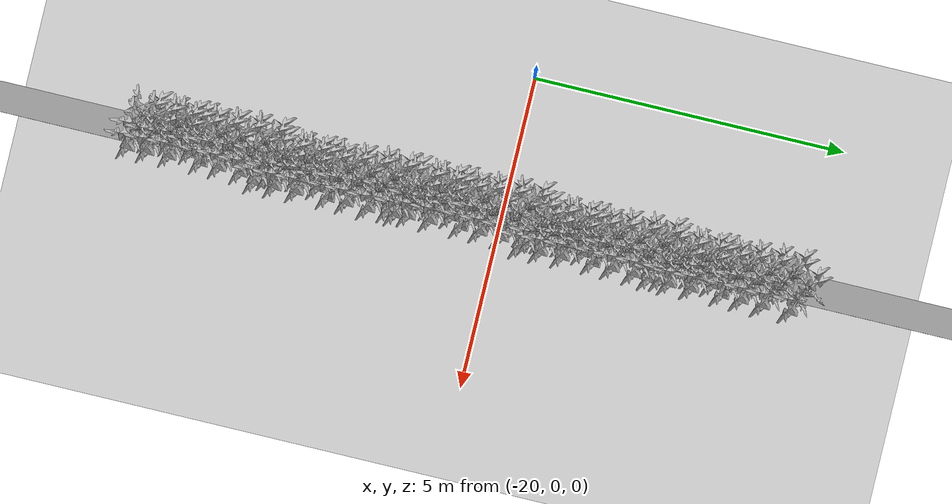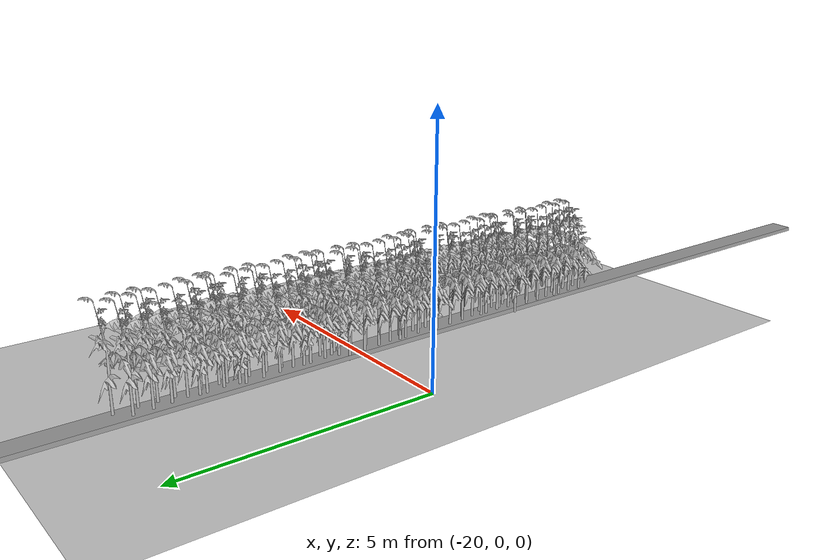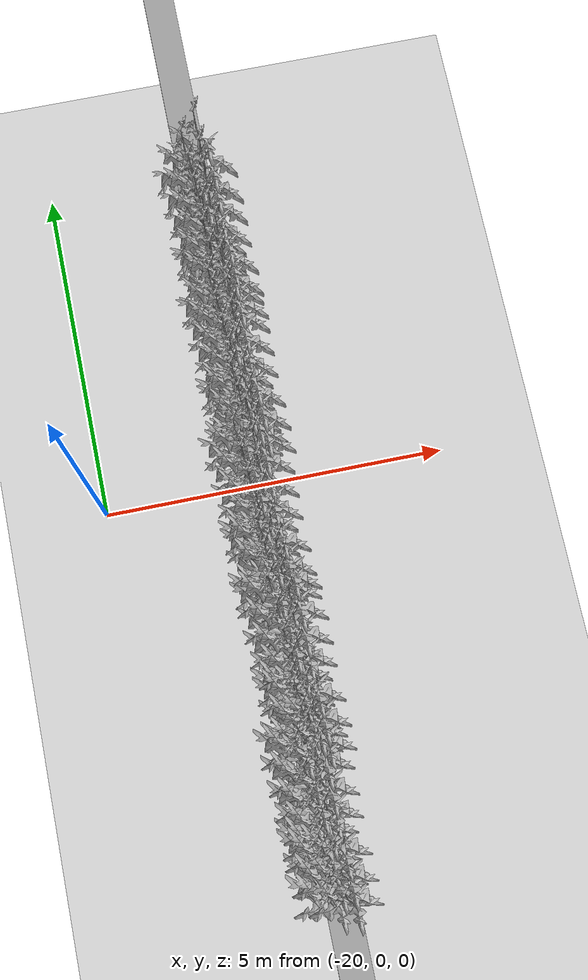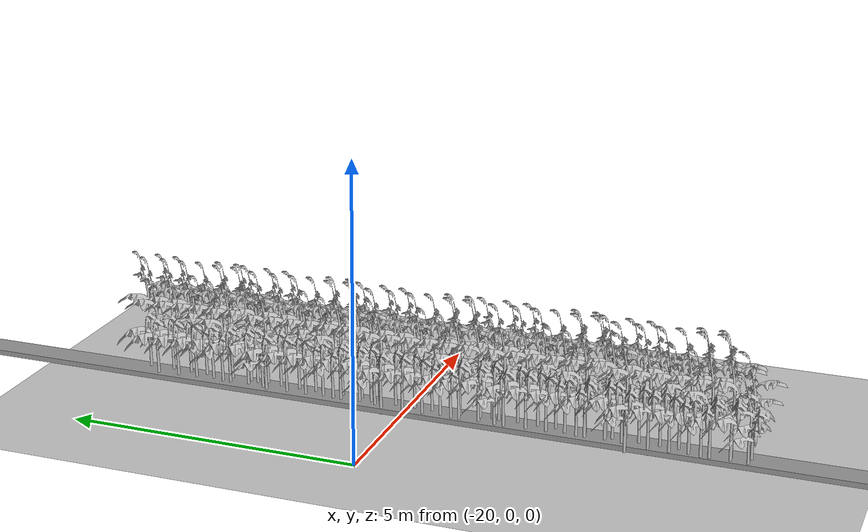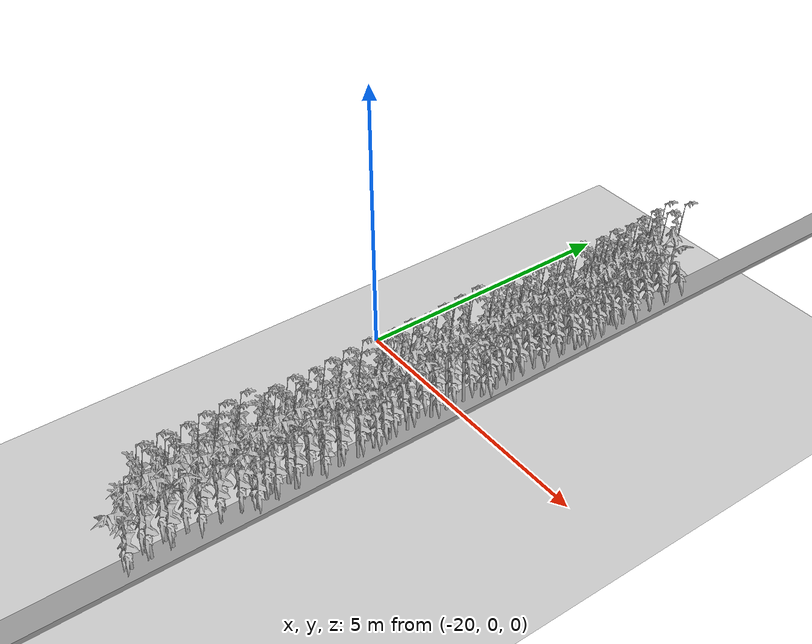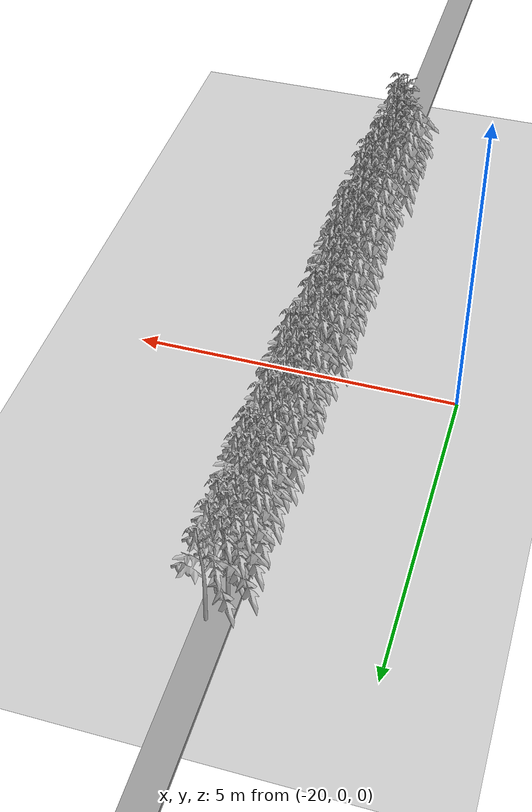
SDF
<sdf version="1.6">
 <world name="default">
  <model name="ground_plane">
   <static>1</static>
   <link name="link">
    <collision name="collision">
     <geometry><plane><normal>0 0 1</normal><size>100 100</size></plane></geometry>
     <surface>
      <contact><collide_bitmask>65535</collide_bitmask></contact>
      <friction><ode><mu>100</mu><mu2>50</mu2></ode></friction>
     </surface>
    </collision>
    <visual name="visual">
     <cast_shadows>0</cast_shadows>
     <geometry><plane><normal>0 0 1</normal><size>100 100</size></plane></geometry>
     <material>
      <script><uri>file://media/materials/scripts/gazebo.material</uri><name>Gazebo/Grey</name></script>
     </material>
    </visual>
   </link>
  </model>
  <model name="Plant_Base_0">
   <model name="Plant_Base">
    <link name="link_0">
     <inertial>
      <mass>1.1839</mass>
      <inertia>
       <ixx>75.2086</ixx>
       <ixy>0</ixy>
       <ixz>0</ixz>
       <iyy>0.0226752</iyy>
       <iyz>0</iyz>
       <izz>75.2297</izz>
      </inertia>
     </inertial>
     <pose>1.3e-05 0 0 0 -0.006723 0</pose>
     <visual name="visual">
      <geometry><box><size>0.470639 27.6098 0.091294</size></box></geometry>
      <material>
       <lighting>1</lighting>
       <script><uri>file://media/materials/scripts/gazebo.material</uri><name>Gazebo/Grey</name></script>
      </material>
     </visual>
     <collision name="collision">
      <geometry><box><size>0.470639 27.6098 0.091294</size></box></geometry>
      <surface>
       <friction>
        <ode><mu>1</mu><mu2>1</mu2><fdir1>0 0 0</fdir1><slip1>0</slip1><slip2>0</slip2></ode>
        <torsional>
         <coefficient>1</coefficient>
         <patch_radius>0</patch_radius>
         <surface_radius>0</surface_radius>
         <use_patch_radius>1</use_patch_radius>
         <ode><slip>0</slip></ode>
        </torsional>
       </friction>
       <bounce><restitution_coefficient>0</restitution_coefficient><threshold>1e+06</threshold></bounce>
       <contact>
        <collide_without_contact>0</collide_without_contact>
        <collide_without_contact_bitmask>1</collide_without_contact_bitmask>
        <collide_bitmask>1</collide_bitmask>
        <ode>
         <soft_cfm>0</soft_cfm>
         <soft_erp>0.2</soft_erp>
         <kp>1e+13</kp>
         <kd>1</kd>
         <max_vel>0.01</max_vel>
         <min_depth>0</min_depth>
        </ode>
        <bullet>
         <split_impulse>1</split_impulse>
         <split_impulse_penetration_threshold>-0.01</split_impulse_penetration_threshold>
         <soft_cfm>0</soft_cfm>
         <soft_erp>0.2</soft_erp>
         <kp>1e+13</kp>
         <kd>1</kd>
        </bullet>
       </contact>
      </surface>
     </collision>
    </link>
    <static>0</static>
    <pose>-3.5e-05 3e-06 0 0 -0 0</pose>
   </model>
   <static>1</static>
   <pose>-17.7667 -0.137203 0.055519 0 -0 0</pose>
  </model>
  <model name="Middle_Plant_1">
   <model name="tomato_plant_big">
    <static>1</static>
    <link name="link">
     <collision name="collision">
      <geometry>
       <mesh><scale>5e-06 5e-06 6e-06</scale><uri>model://tomato_plant_big/meshes/tomato-plant.dae</uri></mesh>
      </geometry>
     </collision>
     <visual name="visual">
      <geometry>
       <mesh><scale>5e-06 5e-06 7e-06</scale><uri>model://tomato_plant_big/meshes/tomato-plant.dae</uri></mesh>
      </geometry>
     </visual>
    </link>
    <pose>0.085326 1.23023 0 0 -0 0</pose>
   </model>
   <model name="tomato_plant_big_0">
    <static>1</static>
    <link name="link">
     <collision name="collision">
      <geometry>
       <mesh><scale>5e-06 5e-06 6e-06</scale><uri>model://tomato_plant_big/meshes/tomato-plant.dae</uri></mesh>
      </geometry>
     </collision>
     <visual name="visual">
      <geometry>
       <mesh><scale>5e-06 5e-06 7e-06</scale><uri>model://tomato_plant_big/meshes/tomato-plant.dae</uri></mesh>
      </geometry>
     </visual>
    </link>
    <pose>-0.133881 0.970183 0 0 -0 0</pose>
   </model>
   <model name="tomato_plant_big_1">
    <static>1</static>
    <link name="link">
     <collision name="collision">
      <geometry>
       <mesh><scale>5e-06 5e-06 6e-06</scale><uri>model://tomato_plant_big/meshes/tomato-plant.dae</uri></mesh>
      </geometry>
     </collision>
     <visual name="visual">
      <geometry>
       <mesh><scale>5e-06 5e-06 7e-06</scale><uri>model://tomato_plant_big/meshes/tomato-plant.dae</uri></mesh>
      </geometry>
     </visual>
    </link>
    <pose>0.091162 0.792381 0 0 -0 0</pose>
   </model>
   <model name="tomato_plant_big_2">
    <static>1</static>
    <link name="link">
     <collision name="collision">
      <geometry>
       <mesh><scale>5e-06 5e-06 6e-06</scale><uri>model://tomato_plant_big/meshes/tomato-plant.dae</uri></mesh>
      </geometry>
     </collision>
     <visual name="visual">
      <geometry>
       <mesh><scale>5e-06 5e-06 7e-06</scale><uri>model://tomato_plant_big/meshes/tomato-plant.dae</uri></mesh>
      </geometry>
     </visual>
    </link>
    <pose>-0.099228 0.602587 0 0 -0 0</pose>
   </model>
   <model name="tomato_plant_big_3">
    <static>1</static>
    <link name="link">
     <collision name="collision">
      <geometry>
       <mesh><scale>5e-06 5e-06 6e-06</scale><uri>model://tomato_plant_big/meshes/tomato-plant.dae</uri></mesh>
      </geometry>
     </collision>
     <visual name="visual">
      <geometry>
       <mesh><scale>5e-06 5e-06 7e-06</scale><uri>model://tomato_plant_big/meshes/tomato-plant.dae</uri></mesh>
      </geometry>
     </visual>
    </link>
    <pose>0.083199 0.447645 0 0 -0 0</pose>
   </model>
   <model name="tomato_plant_big_4">
    <static>1</static>
    <link name="link">
     <collision name="collision">
      <geometry>
       <mesh><scale>5e-06 5e-06 6e-06</scale><uri>model://tomato_plant_big/meshes/tomato-plant.dae</uri></mesh>
      </geometry>
     </collision>
     <visual name="visual">
      <geometry>
       <mesh><scale>5e-06 5e-06 7e-06</scale><uri>model://tomato_plant_big/meshes/tomato-plant.dae</uri></mesh>
      </geometry>
     </visual>
    </link>
    <pose>-0.079499 0.263486 0 0 -0 0</pose>
   </model>
   <model name="tomato_plant_big_5">
    <static>1</static>
    <link name="link">
     <collision name="collision">
      <geometry>
       <mesh><scale>5e-06 5e-06 6e-06</scale><uri>model://tomato_plant_big/meshes/tomato-plant.dae</uri></mesh>
      </geometry>
     </collision>
     <visual name="visual">
      <geometry>
       <mesh><scale>5e-06 5e-06 7e-06</scale><uri>model://tomato_plant_big/meshes/tomato-plant.dae</uri></mesh>
      </geometry>
     </visual>
    </link>
    <pose>-0.033274 -0.040578 0 0 -0 0</pose>
   </model>
   <model name="tomato_plant_big_6">
    <static>1</static>
    <link name="link">
     <collision name="collision">
      <geometry>
       <mesh><scale>5e-06 5e-06 6e-06</scale><uri>model://tomato_plant_big/meshes/tomato-plant.dae</uri></mesh>
      </geometry>
     </collision>
     <visual name="visual">
      <geometry>
       <mesh><scale>5e-06 5e-06 7e-06</scale><uri>model://tomato_plant_big/meshes/tomato-plant.dae</uri></mesh>
      </geometry>
     </visual>
    </link>
    <pose>-0.07669 -0.382406 0 0 -0 0</pose>
   </model>
   <model name="tomato_plant_big_7">
    <static>1</static>
    <link name="link">
     <collision name="collision">
      <geometry>
       <mesh><scale>5e-06 5e-06 6e-06</scale><uri>model://tomato_plant_big/meshes/tomato-plant.dae</uri></mesh>
      </geometry>
     </collision>
     <visual name="visual">
      <geometry>
       <mesh><scale>5e-06 5e-06 7e-06</scale><uri>model://tomato_plant_big/meshes/tomato-plant.dae</uri></mesh>
      </geometry>
     </visual>
    </link>
    <pose>0.092388 -0.348189 0 0 -0 0</pose>
   </model>
   <model name="tomato_plant_big_8">
    <static>1</static>
    <link name="link">
     <collision name="collision">
      <geometry>
       <mesh><scale>5e-06 5e-06 6e-06</scale><uri>model://tomato_plant_big/meshes/tomato-plant.dae</uri></mesh>
      </geometry>
     </collision>
     <visual name="visual">
      <geometry>
       <mesh><scale>5e-06 5e-06 7e-06</scale><uri>model://tomato_plant_big/meshes/tomato-plant.dae</uri></mesh>
      </geometry>
     </visual>
    </link>
    <pose>0.099522 -0.697525 0 0 -0 0</pose>
   </model>
   <model name="tomato_plant_big_9">
    <static>1</static>
    <link name="link">
     <collision name="collision">
      <geometry>
       <mesh><scale>5e-06 5e-06 6e-06</scale><uri>model://tomato_plant_big/meshes/tomato-plant.dae</uri></mesh>
      </geometry>
     </collision>
     <visual name="visual">
      <geometry>
       <mesh><scale>5e-06 5e-06 7e-06</scale><uri>model://tomato_plant_big/meshes/tomato-plant.dae</uri></mesh>
      </geometry>
     </visual>
    </link>
    <pose>-0.050449 -0.712772 0 0 -0 0</pose>
   </model>
   <model name="tomato_plant_medium">
    <static>1</static>
    <link name="link">
     <collision name="collision">
      <geometry>
       <mesh><scale>5e-06 5e-06 6e-06</scale><uri>model://tomato_plant_medium/meshes/tomato-plant.dae</uri></mesh>
      </geometry>
     </collision>
     <visual name="visual">
      <geometry>
       <mesh><scale>5e-06 5e-06 6e-06</scale><uri>model://tomato_plant_medium/meshes/tomato-plant.dae</uri></mesh>
      </geometry>
     </visual>
    </link>
    <pose>0.078434 0.139842 0 0 -0 0</pose>
   </model>
   <model name="tomato_plant_medium_0">
    <static>1</static>
    <link name="link">
     <collision name="collision">
      <geometry>
       <mesh><scale>5e-06 5e-06 6e-06</scale><uri>model://tomato_plant_medium/meshes/tomato-plant.dae</uri></mesh>
      </geometry>
     </collision>
     <visual name="visual">
      <geometry>
       <mesh><scale>5e-06 5e-06 6e-06</scale><uri>model://tomato_plant_medium/meshes/tomato-plant.dae</uri></mesh>
      </geometry>
     </visual>
    </link>
    <pose>-0.079755 -0.244483 0 0 -0 0</pose>
   </model>
   <model name="tomato_plant_medium_1">
    <static>1</static>
    <link name="link">
     <collision name="collision">
      <geometry>
       <mesh><scale>5e-06 5e-06 6e-06</scale><uri>model://tomato_plant_medium/meshes/tomato-plant.dae</uri></mesh>
      </geometry>
     </collision>
     <visual name="visual">
      <geometry>
       <mesh><scale>5e-06 5e-06 6e-06</scale><uri>model://tomato_plant_medium/meshes/tomato-plant.dae</uri></mesh>
      </geometry>
     </visual>
    </link>
    <pose>0.106744 -1.01815 0 0 -0 0</pose>
   </model>
   <model name="tomato_plant_small">
    <static>1</static>
    <link name="link">
     <collision name="collision">
      <geometry>
       <mesh><scale>5e-06 5e-06 5e-06</scale><uri>model://tomato_plant_small/meshes/tomato-plant.dae</uri></mesh>
      </geometry>
     </collision>
     <visual name="visual">
      <geometry>
       <mesh><scale>5e-06 5e-06 5e-06</scale><uri>model://tomato_plant_small/meshes/tomato-plant.dae</uri></mesh>
      </geometry>
     </visual>
    </link>
    <pose>-0.083979 -1.00222 0 0 -0 0</pose>
   </model>
   <static>0</static>
   <pose>-17.8578 -4.83213 0 0 -0 0</pose>
  </model>
  <model name="Middle_Plant_2">
   <model name="tomato_plant_big">
    <static>1</static>
    <link name="link">
     <collision name="collision">
      <geometry>
       <mesh><scale>5e-06 5e-06 6e-06</scale><uri>model://tomato_plant_big/meshes/tomato-plant.dae</uri></mesh>
      </geometry>
     </collision>
     <visual name="visual">
      <geometry>
       <mesh><scale>5e-06 5e-06 7e-06</scale><uri>model://tomato_plant_big/meshes/tomato-plant.dae</uri></mesh>
      </geometry>
     </visual>
    </link>
    <pose>0.085326 1.23023 0 0 -0 0</pose>
   </model>
   <model name="tomato_plant_big_0">
    <static>1</static>
    <link name="link">
     <collision name="collision">
      <geometry>
       <mesh><scale>5e-06 5e-06 6e-06</scale><uri>model://tomato_plant_big/meshes/tomato-plant.dae</uri></mesh>
      </geometry>
     </collision>
     <visual name="visual">
      <geometry>
       <mesh><scale>5e-06 5e-06 7e-06</scale><uri>model://tomato_plant_big/meshes/tomato-plant.dae</uri></mesh>
      </geometry>
     </visual>
    </link>
    <pose>-0.133881 0.970183 0 0 -0 0</pose>
   </model>
   <model name="tomato_plant_big_1">
    <static>1</static>
    <link name="link">
     <collision name="collision">
      <geometry>
       <mesh><scale>5e-06 5e-06 6e-06</scale><uri>model://tomato_plant_big/meshes/tomato-plant.dae</uri></mesh>
      </geometry>
     </collision>
     <visual name="visual">
      <geometry>
       <mesh><scale>5e-06 5e-06 7e-06</scale><uri>model://tomato_plant_big/meshes/tomato-plant.dae</uri></mesh>
      </geometry>
     </visual>
    </link>
    <pose>0.091162 0.792381 0 0 -0 0</pose>
   </model>
   <model name="tomato_plant_big_2">
    <static>1</static>
    <link name="link">
     <collision name="collision">
      <geometry>
       <mesh><scale>5e-06 5e-06 6e-06</scale><uri>model://tomato_plant_big/meshes/tomato-plant.dae</uri></mesh>
      </geometry>
     </collision>
     <visual name="visual">
      <geometry>
       <mesh><scale>5e-06 5e-06 7e-06</scale><uri>model://tomato_plant_big/meshes/tomato-plant.dae</uri></mesh>
      </geometry>
     </visual>
    </link>
    <pose>-0.099228 0.602587 0 0 -0 0</pose>
   </model>
   <model name="tomato_plant_big_3">
    <static>1</static>
    <link name="link">
     <collision name="collision">
      <geometry>
       <mesh><scale>5e-06 5e-06 6e-06</scale><uri>model://tomato_plant_big/meshes/tomato-plant.dae</uri></mesh>
      </geometry>
     </collision>
     <visual name="visual">
      <geometry>
       <mesh><scale>5e-06 5e-06 7e-06</scale><uri>model://tomato_plant_big/meshes/tomato-plant.dae</uri></mesh>
      </geometry>
     </visual>
    </link>
    <pose>0.083199 0.447645 0 0 -0 0</pose>
   </model>
   <model name="tomato_plant_big_4">
    <static>1</static>
    <link name="link">
     <collision name="collision">
      <geometry>
       <mesh><scale>5e-06 5e-06 6e-06</scale><uri>model://tomato_plant_big/meshes/tomato-plant.dae</uri></mesh>
      </geometry>
     </collision>
     <visual name="visual">
      <geometry>
       <mesh><scale>5e-06 5e-06 7e-06</scale><uri>model://tomato_plant_big/meshes/tomato-plant.dae</uri></mesh>
      </geometry>
     </visual>
    </link>
    <pose>-0.079499 0.263486 0 0 -0 0</pose>
   </model>
   <model name="tomato_plant_big_5">
    <static>1</static>
    <link name="link">
     <collision name="collision">
      <geometry>
       <mesh><scale>5e-06 5e-06 6e-06</scale><uri>model://tomato_plant_big/meshes/tomato-plant.dae</uri></mesh>
      </geometry>
     </collision>
     <visual name="visual">
      <geometry>
       <mesh><scale>5e-06 5e-06 7e-06</scale><uri>model://tomato_plant_big/meshes/tomato-plant.dae</uri></mesh>
      </geometry>
     </visual>
    </link>
    <pose>-0.033274 -0.040578 0 0 -0 0</pose>
   </model>
   <model name="tomato_plant_big_6">
    <static>1</static>
    <link name="link">
     <collision name="collision">
      <geometry>
       <mesh><scale>5e-06 5e-06 6e-06</scale><uri>model://tomato_plant_big/meshes/tomato-plant.dae</uri></mesh>
      </geometry>
     </collision>
     <visual name="visual">
      <geometry>
       <mesh><scale>5e-06 5e-06 7e-06</scale><uri>model://tomato_plant_big/meshes/tomato-plant.dae</uri></mesh>
      </geometry>
     </visual>
    </link>
    <pose>-0.07669 -0.382406 0 0 -0 0</pose>
   </model>
   <model name="tomato_plant_big_7">
    <static>1</static>
    <link name="link">
     <collision name="collision">
      <geometry>
       <mesh><scale>5e-06 5e-06 6e-06</scale><uri>model://tomato_plant_big/meshes/tomato-plant.dae</uri></mesh>
      </geometry>
     </collision>
     <visual name="visual">
      <geometry>
       <mesh><scale>5e-06 5e-06 7e-06</scale><uri>model://tomato_plant_big/meshes/tomato-plant.dae</uri></mesh>
      </geometry>
     </visual>
    </link>
    <pose>0.092388 -0.348189 0 0 -0 0</pose>
   </model>
   <model name="tomato_plant_big_8">
    <static>1</static>
    <link name="link">
     <collision name="collision">
      <geometry>
       <mesh><scale>5e-06 5e-06 6e-06</scale><uri>model://tomato_plant_big/meshes/tomato-plant.dae</uri></mesh>
      </geometry>
     </collision>
     <visual name="visual">
      <geometry>
       <mesh><scale>5e-06 5e-06 7e-06</scale><uri>model://tomato_plant_big/meshes/tomato-plant.dae</uri></mesh>
      </geometry>
     </visual>
    </link>
    <pose>0.099522 -0.697525 0 0 -0 0</pose>
   </model>
   <model name="tomato_plant_big_9">
    <static>1</static>
    <link name="link">
     <collision name="collision">
      <geometry>
       <mesh><scale>5e-06 5e-06 6e-06</scale><uri>model://tomato_plant_big/meshes/tomato-plant.dae</uri></mesh>
      </geometry>
     </collision>
     <visual name="visual">
      <geometry>
       <mesh><scale>5e-06 5e-06 7e-06</scale><uri>model://tomato_plant_big/meshes/tomato-plant.dae</uri></mesh>
      </geometry>
     </visual>
    </link>
    <pose>-0.050449 -0.712772 0 0 -0 0</pose>
   </model>
   <model name="tomato_plant_medium">
    <static>1</static>
    <link name="link">
     <collision name="collision">
      <geometry>
       <mesh><scale>5e-06 5e-06 6e-06</scale><uri>model://tomato_plant_medium/meshes/tomato-plant.dae</uri></mesh>
      </geometry>
     </collision>
     <visual name="visual">
      <geometry>
       <mesh><scale>5e-06 5e-06 6e-06</scale><uri>model://tomato_plant_medium/meshes/tomato-plant.dae</uri></mesh>
      </geometry>
     </visual>
    </link>
    <pose>0.078434 0.139842 0 0 -0 0</pose>
   </model>
   <model name="tomato_plant_medium_0">
    <static>1</static>
    <link name="link">
     <collision name="collision">
      <geometry>
       <mesh><scale>5e-06 5e-06 6e-06</scale><uri>model://tomato_plant_medium/meshes/tomato-plant.dae</uri></mesh>
      </geometry>
     </collision>
     <visual name="visual">
      <geometry>
       <mesh><scale>5e-06 5e-06 6e-06</scale><uri>model://tomato_plant_medium/meshes/tomato-plant.dae</uri></mesh>
      </geometry>
     </visual>
    </link>
    <pose>-0.079755 -0.244483 0 0 -0 0</pose>
   </model>
   <model name="tomato_plant_medium_1">
    <static>1</static>
    <link name="link">
     <collision name="collision">
      <geometry>
       <mesh><scale>5e-06 5e-06 6e-06</scale><uri>model://tomato_plant_medium/meshes/tomato-plant.dae</uri></mesh>
      </geometry>
     </collision>
     <visual name="visual">
      <geometry>
       <mesh><scale>5e-06 5e-06 6e-06</scale><uri>model://tomato_plant_medium/meshes/tomato-plant.dae</uri></mesh>
      </geometry>
     </visual>
    </link>
    <pose>0.106744 -1.01815 0 0 -0 0</pose>
   </model>
   <model name="tomato_plant_small">
    <static>1</static>
    <link name="link">
     <collision name="collision">
      <geometry>
       <mesh><scale>5e-06 5e-06 5e-06</scale><uri>model://tomato_plant_small/meshes/tomato-plant.dae</uri></mesh>
      </geometry>
     </collision>
     <visual name="visual">
      <geometry>
       <mesh><scale>5e-06 5e-06 5e-06</scale><uri>model://tomato_plant_small/meshes/tomato-plant.dae</uri></mesh>
      </geometry>
     </visual>
    </link>
    <pose>-0.083979 -1.00222 0 0 -0 0</pose>
   </model>
   <static>0</static>
   <pose>-17.7846 -2.78008 0 0 -0 0</pose>
  </model>
  <model name="Middle_Plant_3">
   <model name="tomato_plant_big">
    <static>1</static>
    <link name="link">
     <collision name="collision">
      <geometry>
       <mesh><scale>5e-06 5e-06 6e-06</scale><uri>model://tomato_plant_big/meshes/tomato-plant.dae</uri></mesh>
      </geometry>
     </collision>
     <visual name="visual">
      <geometry>
       <mesh><scale>5e-06 5e-06 7e-06</scale><uri>model://tomato_plant_big/meshes/tomato-plant.dae</uri></mesh>
      </geometry>
     </visual>
    </link>
    <pose>0.085326 1.23023 0 0 -0 0</pose>
   </model>
   <model name="tomato_plant_big_0">
    <static>1</static>
    <link name="link">
     <collision name="collision">
      <geometry>
       <mesh><scale>5e-06 5e-06 6e-06</scale><uri>model://tomato_plant_big/meshes/tomato-plant.dae</uri></mesh>
      </geometry>
     </collision>
     <visual name="visual">
      <geometry>
       <mesh><scale>5e-06 5e-06 7e-06</scale><uri>model://tomato_plant_big/meshes/tomato-plant.dae</uri></mesh>
      </geometry>
     </visual>
    </link>
    <pose>-0.133881 0.970183 0 0 -0 0</pose>
   </model>
   <model name="tomato_plant_big_1">
    <static>1</static>
    <link name="link">
     <collision name="collision">
      <geometry>
       <mesh><scale>5e-06 5e-06 6e-06</scale><uri>model://tomato_plant_big/meshes/tomato-plant.dae</uri></mesh>
      </geometry>
     </collision>
     <visual name="visual">
      <geometry>
       <mesh><scale>5e-06 5e-06 7e-06</scale><uri>model://tomato_plant_big/meshes/tomato-plant.dae</uri></mesh>
      </geometry>
     </visual>
    </link>
    <pose>0.091162 0.792381 0 0 -0 0</pose>
   </model>
   <model name="tomato_plant_big_2">
    <static>1</static>
    <link name="link">
     <collision name="collision">
      <geometry>
       <mesh><scale>5e-06 5e-06 6e-06</scale><uri>model://tomato_plant_big/meshes/tomato-plant.dae</uri></mesh>
      </geometry>
     </collision>
     <visual name="visual">
      <geometry>
       <mesh><scale>5e-06 5e-06 7e-06</scale><uri>model://tomato_plant_big/meshes/tomato-plant.dae</uri></mesh>
      </geometry>
     </visual>
    </link>
    <pose>-0.099228 0.602587 0 0 -0 0</pose>
   </model>
   <model name="tomato_plant_big_3">
    <static>1</static>
    <link name="link">
     <collision name="collision">
      <geometry>
       <mesh><scale>5e-06 5e-06 6e-06</scale><uri>model://tomato_plant_big/meshes/tomato-plant.dae</uri></mesh>
      </geometry>
     </collision>
     <visual name="visual">
      <geometry>
       <mesh><scale>5e-06 5e-06 7e-06</scale><uri>model://tomato_plant_big/meshes/tomato-plant.dae</uri></mesh>
      </geometry>
     </visual>
    </link>
    <pose>0.083199 0.447645 0 0 -0 0</pose>
   </model>
   <model name="tomato_plant_big_4">
    <static>1</static>
    <link name="link">
     <collision name="collision">
      <geometry>
       <mesh><scale>5e-06 5e-06 6e-06</scale><uri>model://tomato_plant_big/meshes/tomato-plant.dae</uri></mesh>
      </geometry>
     </collision>
     <visual name="visual">
      <geometry>
       <mesh><scale>5e-06 5e-06 7e-06</scale><uri>model://tomato_plant_big/meshes/tomato-plant.dae</uri></mesh>
      </geometry>
     </visual>
    </link>
    <pose>-0.079499 0.263486 0 0 -0 0</pose>
   </model>
   <model name="tomato_plant_big_5">
    <static>1</static>
    <link name="link">
     <collision name="collision">
      <geometry>
       <mesh><scale>5e-06 5e-06 6e-06</scale><uri>model://tomato_plant_big/meshes/tomato-plant.dae</uri></mesh>
      </geometry>
     </collision>
     <visual name="visual">
      <geometry>
       <mesh><scale>5e-06 5e-06 7e-06</scale><uri>model://tomato_plant_big/meshes/tomato-plant.dae</uri></mesh>
      </geometry>
     </visual>
    </link>
    <pose>-0.033274 -0.040578 0 0 -0 0</pose>
   </model>
   <model name="tomato_plant_big_6">
    <static>1</static>
    <link name="link">
     <collision name="collision">
      <geometry>
       <mesh><scale>5e-06 5e-06 6e-06</scale><uri>model://tomato_plant_big/meshes/tomato-plant.dae</uri></mesh>
      </geometry>
     </collision>
     <visual name="visual">
      <geometry>
       <mesh><scale>5e-06 5e-06 7e-06</scale><uri>model://tomato_plant_big/meshes/tomato-plant.dae</uri></mesh>
      </geometry>
     </visual>
    </link>
    <pose>-0.07669 -0.382406 0 0 -0 0</pose>
   </model>
   <model name="tomato_plant_big_7">
    <static>1</static>
    <link name="link">
     <collision name="collision">
      <geometry>
       <mesh><scale>5e-06 5e-06 6e-06</scale><uri>model://tomato_plant_big/meshes/tomato-plant.dae</uri></mesh>
      </geometry>
     </collision>
     <visual name="visual">
      <geometry>
       <mesh><scale>5e-06 5e-06 7e-06</scale><uri>model://tomato_plant_big/meshes/tomato-plant.dae</uri></mesh>
      </geometry>
     </visual>
    </link>
    <pose>0.092388 -0.348189 0 0 -0 0</pose>
   </model>
   <model name="tomato_plant_big_8">
    <static>1</static>
    <link name="link">
     <collision name="collision">
      <geometry>
       <mesh><scale>5e-06 5e-06 6e-06</scale><uri>model://tomato_plant_big/meshes/tomato-plant.dae</uri></mesh>
      </geometry>
     </collision>
     <visual name="visual">
      <geometry>
       <mesh><scale>5e-06 5e-06 7e-06</scale><uri>model://tomato_plant_big/meshes/tomato-plant.dae</uri></mesh>
      </geometry>
     </visual>
    </link>
    <pose>0.099522 -0.697525 0 0 -0 0</pose>
   </model>
   <model name="tomato_plant_big_9">
    <static>1</static>
    <link name="link">
     <collision name="collision">
      <geometry>
       <mesh><scale>5e-06 5e-06 6e-06</scale><uri>model://tomato_plant_big/meshes/tomato-plant.dae</uri></mesh>
      </geometry>
     </collision>
     <visual name="visual">
      <geometry>
       <mesh><scale>5e-06 5e-06 7e-06</scale><uri>model://tomato_plant_big/meshes/tomato-plant.dae</uri></mesh>
      </geometry>
     </visual>
    </link>
    <pose>-0.050449 -0.712772 0 0 -0 0</pose>
   </model>
   <model name="tomato_plant_medium">
    <static>1</static>
    <link name="link">
     <collision name="collision">
      <geometry>
       <mesh><scale>5e-06 5e-06 6e-06</scale><uri>model://tomato_plant_medium/meshes/tomato-plant.dae</uri></mesh>
      </geometry>
     </collision>
     <visual name="visual">
      <geometry>
       <mesh><scale>5e-06 5e-06 6e-06</scale><uri>model://tomato_plant_medium/meshes/tomato-plant.dae</uri></mesh>
      </geometry>
     </visual>
    </link>
    <pose>0.078434 0.139842 0 0 -0 0</pose>
   </model>
   <model name="tomato_plant_medium_0">
    <static>1</static>
    <link name="link">
     <collision name="collision">
      <geometry>
       <mesh><scale>5e-06 5e-06 6e-06</scale><uri>model://tomato_plant_medium/meshes/tomato-plant.dae</uri></mesh>
      </geometry>
     </collision>
     <visual name="visual">
      <geometry>
       <mesh><scale>5e-06 5e-06 6e-06</scale><uri>model://tomato_plant_medium/meshes/tomato-plant.dae</uri></mesh>
      </geometry>
     </visual>
    </link>
    <pose>-0.079755 -0.244483 0 0 -0 0</pose>
   </model>
   <model name="tomato_plant_medium_1">
    <static>1</static>
    <link name="link">
     <collision name="collision">
      <geometry>
       <mesh><scale>5e-06 5e-06 6e-06</scale><uri>model://tomato_plant_medium/meshes/tomato-plant.dae</uri></mesh>
      </geometry>
     </collision>
     <visual name="visual">
      <geometry>
       <mesh><scale>5e-06 5e-06 6e-06</scale><uri>model://tomato_plant_medium/meshes/tomato-plant.dae</uri></mesh>
      </geometry>
     </visual>
    </link>
    <pose>0.106744 -1.01815 0 0 -0 0</pose>
   </model>
   <model name="tomato_plant_small">
    <static>1</static>
    <link name="link">
     <collision name="collision">
      <geometry>
       <mesh><scale>5e-06 5e-06 5e-06</scale><uri>model://tomato_plant_small/meshes/tomato-plant.dae</uri></mesh>
      </geometry>
     </collision>
     <visual name="visual">
      <geometry>
       <mesh><scale>5e-06 5e-06 5e-06</scale><uri>model://tomato_plant_small/meshes/tomato-plant.dae</uri></mesh>
      </geometry>
     </visual>
    </link>
    <pose>-0.083979 -1.00222 0 0 -0 0</pose>
   </model>
   <static>0</static>
   <pose>-17.83 -0.652997 0 0 -0 0</pose>
  </model>
  <model name="Middle_Plant_4">
   <model name="tomato_plant_big">
    <static>1</static>
    <link name="link">
     <collision name="collision">
      <geometry>
       <mesh><scale>5e-06 5e-06 6e-06</scale><uri>model://tomato_plant_big/meshes/tomato-plant.dae</uri></mesh>
      </geometry>
     </collision>
     <visual name="visual">
      <geometry>
       <mesh><scale>5e-06 5e-06 7e-06</scale><uri>model://tomato_plant_big/meshes/tomato-plant.dae</uri></mesh>
      </geometry>
     </visual>
    </link>
    <pose>0.085326 1.23023 0 0 -0 0</pose>
   </model>
   <model name="tomato_plant_big_0">
    <static>1</static>
    <link name="link">
     <collision name="collision">
      <geometry>
       <mesh><scale>5e-06 5e-06 6e-06</scale><uri>model://tomato_plant_big/meshes/tomato-plant.dae</uri></mesh>
      </geometry>
     </collision>
     <visual name="visual">
      <geometry>
       <mesh><scale>5e-06 5e-06 7e-06</scale><uri>model://tomato_plant_big/meshes/tomato-plant.dae</uri></mesh>
      </geometry>
     </visual>
    </link>
    <pose>-0.133881 0.970183 0 0 -0 0</pose>
   </model>
   <model name="tomato_plant_big_1">
    <static>1</static>
    <link name="link">
     <collision name="collision">
      <geometry>
       <mesh><scale>5e-06 5e-06 6e-06</scale><uri>model://tomato_plant_big/meshes/tomato-plant.dae</uri></mesh>
      </geometry>
     </collision>
     <visual name="visual">
      <geometry>
       <mesh><scale>5e-06 5e-06 7e-06</scale><uri>model://tomato_plant_big/meshes/tomato-plant.dae</uri></mesh>
      </geometry>
     </visual>
    </link>
    <pose>0.091162 0.792381 0 0 -0 0</pose>
   </model>
   <model name="tomato_plant_big_2">
    <static>1</static>
    <link name="link">
     <collision name="collision">
      <geometry>
       <mesh><scale>5e-06 5e-06 6e-06</scale><uri>model://tomato_plant_big/meshes/tomato-plant.dae</uri></mesh>
      </geometry>
     </collision>
     <visual name="visual">
      <geometry>
       <mesh><scale>5e-06 5e-06 7e-06</scale><uri>model://tomato_plant_big/meshes/tomato-plant.dae</uri></mesh>
      </geometry>
     </visual>
    </link>
    <pose>-0.099228 0.602587 0 0 -0 0</pose>
   </model>
   <model name="tomato_plant_big_3">
    <static>1</static>
    <link name="link">
     <collision name="collision">
      <geometry>
       <mesh><scale>5e-06 5e-06 6e-06</scale><uri>model://tomato_plant_big/meshes/tomato-plant.dae</uri></mesh>
      </geometry>
     </collision>
     <visual name="visual">
      <geometry>
       <mesh><scale>5e-06 5e-06 7e-06</scale><uri>model://tomato_plant_big/meshes/tomato-plant.dae</uri></mesh>
      </geometry>
     </visual>
    </link>
    <pose>0.083199 0.447645 0 0 -0 0</pose>
   </model>
   <model name="tomato_plant_big_4">
    <static>1</static>
    <link name="link">
     <collision name="collision">
      <geometry>
       <mesh><scale>5e-06 5e-06 6e-06</scale><uri>model://tomato_plant_big/meshes/tomato-plant.dae</uri></mesh>
      </geometry>
     </collision>
     <visual name="visual">
      <geometry>
       <mesh><scale>5e-06 5e-06 7e-06</scale><uri>model://tomato_plant_big/meshes/tomato-plant.dae</uri></mesh>
      </geometry>
     </visual>
    </link>
    <pose>-0.079499 0.263486 0 0 -0 0</pose>
   </model>
   <model name="tomato_plant_big_5">
    <static>1</static>
    <link name="link">
     <collision name="collision">
      <geometry>
       <mesh><scale>5e-06 5e-06 6e-06</scale><uri>model://tomato_plant_big/meshes/tomato-plant.dae</uri></mesh>
      </geometry>
     </collision>
     <visual name="visual">
      <geometry>
       <mesh><scale>5e-06 5e-06 7e-06</scale><uri>model://tomato_plant_big/meshes/tomato-plant.dae</uri></mesh>
      </geometry>
     </visual>
    </link>
    <pose>-0.033274 -0.040578 0 0 -0 0</pose>
   </model>
   <model name="tomato_plant_big_6">
    <static>1</static>
    <link name="link">
     <collision name="collision">
      <geometry>
       <mesh><scale>5e-06 5e-06 6e-06</scale><uri>model://tomato_plant_big/meshes/tomato-plant.dae</uri></mesh>
      </geometry>
     </collision>
     <visual name="visual">
      <geometry>
       <mesh><scale>5e-06 5e-06 7e-06</scale><uri>model://tomato_plant_big/meshes/tomato-plant.dae</uri></mesh>
      </geometry>
     </visual>
    </link>
    <pose>-0.07669 -0.382406 0 0 -0 0</pose>
   </model>
   <model name="tomato_plant_big_7">
    <static>1</static>
    <link name="link">
     <collision name="collision">
      <geometry>
       <mesh><scale>5e-06 5e-06 6e-06</scale><uri>model://tomato_plant_big/meshes/tomato-plant.dae</uri></mesh>
      </geometry>
     </collision>
     <visual name="visual">
      <geometry>
       <mesh><scale>5e-06 5e-06 7e-06</scale><uri>model://tomato_plant_big/meshes/tomato-plant.dae</uri></mesh>
      </geometry>
     </visual>
    </link>
    <pose>0.092388 -0.348189 0 0 -0 0</pose>
   </model>
   <model name="tomato_plant_big_8">
    <static>1</static>
    <link name="link">
     <collision name="collision">
      <geometry>
       <mesh><scale>5e-06 5e-06 6e-06</scale><uri>model://tomato_plant_big/meshes/tomato-plant.dae</uri></mesh>
      </geometry>
     </collision>
     <visual name="visual">
      <geometry>
       <mesh><scale>5e-06 5e-06 7e-06</scale><uri>model://tomato_plant_big/meshes/tomato-plant.dae</uri></mesh>
      </geometry>
     </visual>
    </link>
    <pose>0.099522 -0.697525 0 0 -0 0</pose>
   </model>
   <model name="tomato_plant_big_9">
    <static>1</static>
    <link name="link">
     <collision name="collision">
      <geometry>
       <mesh><scale>5e-06 5e-06 6e-06</scale><uri>model://tomato_plant_big/meshes/tomato-plant.dae</uri></mesh>
      </geometry>
     </collision>
     <visual name="visual">
      <geometry>
       <mesh><scale>5e-06 5e-06 7e-06</scale><uri>model://tomato_plant_big/meshes/tomato-plant.dae</uri></mesh>
      </geometry>
     </visual>
    </link>
    <pose>-0.050449 -0.712772 0 0 -0 0</pose>
   </model>
   <model name="tomato_plant_medium">
    <static>1</static>
    <link name="link">
     <collision name="collision">
      <geometry>
       <mesh><scale>5e-06 5e-06 6e-06</scale><uri>model://tomato_plant_medium/meshes/tomato-plant.dae</uri></mesh>
      </geometry>
     </collision>
     <visual name="visual">
      <geometry>
       <mesh><scale>5e-06 5e-06 6e-06</scale><uri>model://tomato_plant_medium/meshes/tomato-plant.dae</uri></mesh>
      </geometry>
     </visual>
    </link>
    <pose>0.078434 0.139842 0 0 -0 0</pose>
   </model>
   <model name="tomato_plant_medium_0">
    <static>1</static>
    <link name="link">
     <collision name="collision">
      <geometry>
       <mesh><scale>5e-06 5e-06 6e-06</scale><uri>model://tomato_plant_medium/meshes/tomato-plant.dae</uri></mesh>
      </geometry>
     </collision>
     <visual name="visual">
      <geometry>
       <mesh><scale>5e-06 5e-06 6e-06</scale><uri>model://tomato_plant_medium/meshes/tomato-plant.dae</uri></mesh>
      </geometry>
     </visual>
    </link>
    <pose>-0.079755 -0.244483 0 0 -0 0</pose>
   </model>
   <model name="tomato_plant_medium_1">
    <static>1</static>
    <link name="link">
     <collision name="collision">
      <geometry>
       <mesh><scale>5e-06 5e-06 6e-06</scale><uri>model://tomato_plant_medium/meshes/tomato-plant.dae</uri></mesh>
      </geometry>
     </collision>
     <visual name="visual">
      <geometry>
       <mesh><scale>5e-06 5e-06 6e-06</scale><uri>model://tomato_plant_medium/meshes/tomato-plant.dae</uri></mesh>
      </geometry>
     </visual>
    </link>
    <pose>0.106744 -1.01815 0 0 -0 0</pose>
   </model>
   <model name="tomato_plant_small">
    <static>1</static>
    <link name="link">
     <collision name="collision">
      <geometry>
       <mesh><scale>5e-06 5e-06 5e-06</scale><uri>model://tomato_plant_small/meshes/tomato-plant.dae</uri></mesh>
      </geometry>
     </collision>
     <visual name="visual">
      <geometry>
       <mesh><scale>5e-06 5e-06 5e-06</scale><uri>model://tomato_plant_small/meshes/tomato-plant.dae</uri></mesh>
      </geometry>
     </visual>
    </link>
    <pose>-0.083979 -1.00222 0 0 -0 0</pose>
   </model>
   <static>0</static>
   <pose>-17.7611 1.4766 0 0 -0 0</pose>
  </model>
  <model name="Middle_Plant_5">
   <model name="tomato_plant_big">
    <static>1</static>
    <link name="link">
     <collision name="collision">
      <geometry>
       <mesh><scale>5e-06 5e-06 6e-06</scale><uri>model://tomato_plant_big/meshes/tomato-plant.dae</uri></mesh>
      </geometry>
     </collision>
     <visual name="visual">
      <geometry>
       <mesh><scale>5e-06 5e-06 7e-06</scale><uri>model://tomato_plant_big/meshes/tomato-plant.dae</uri></mesh>
      </geometry>
     </visual>
    </link>
    <pose>0.085326 1.23023 0 0 -0 0</pose>
   </model>
   <model name="tomato_plant_big_0">
    <static>1</static>
    <link name="link">
     <collision name="collision">
      <geometry>
       <mesh><scale>5e-06 5e-06 6e-06</scale><uri>model://tomato_plant_big/meshes/tomato-plant.dae</uri></mesh>
      </geometry>
     </collision>
     <visual name="visual">
      <geometry>
       <mesh><scale>5e-06 5e-06 7e-06</scale><uri>model://tomato_plant_big/meshes/tomato-plant.dae</uri></mesh>
      </geometry>
     </visual>
    </link>
    <pose>-0.133881 0.970183 0 0 -0 0</pose>
   </model>
   <model name="tomato_plant_big_1">
    <static>1</static>
    <link name="link">
     <collision name="collision">
      <geometry>
       <mesh><scale>5e-06 5e-06 6e-06</scale><uri>model://tomato_plant_big/meshes/tomato-plant.dae</uri></mesh>
      </geometry>
     </collision>
     <visual name="visual">
      <geometry>
       <mesh><scale>5e-06 5e-06 7e-06</scale><uri>model://tomato_plant_big/meshes/tomato-plant.dae</uri></mesh>
      </geometry>
     </visual>
    </link>
    <pose>0.091162 0.792381 0 0 -0 0</pose>
   </model>
   <model name="tomato_plant_big_2">
    <static>1</static>
    <link name="link">
     <collision name="collision">
      <geometry>
       <mesh><scale>5e-06 5e-06 6e-06</scale><uri>model://tomato_plant_big/meshes/tomato-plant.dae</uri></mesh>
      </geometry>
     </collision>
     <visual name="visual">
      <geometry>
       <mesh><scale>5e-06 5e-06 7e-06</scale><uri>model://tomato_plant_big/meshes/tomato-plant.dae</uri></mesh>
      </geometry>
     </visual>
    </link>
    <pose>-0.099228 0.602587 0 0 -0 0</pose>
   </model>
   <model name="tomato_plant_big_3">
    <static>1</static>
    <link name="link">
     <collision name="collision">
      <geometry>
       <mesh><scale>5e-06 5e-06 6e-06</scale><uri>model://tomato_plant_big/meshes/tomato-plant.dae</uri></mesh>
      </geometry>
     </collision>
     <visual name="visual">
      <geometry>
       <mesh><scale>5e-06 5e-06 7e-06</scale><uri>model://tomato_plant_big/meshes/tomato-plant.dae</uri></mesh>
      </geometry>
     </visual>
    </link>
    <pose>0.083199 0.447645 0 0 -0 0</pose>
   </model>
   <model name="tomato_plant_big_4">
    <static>1</static>
    <link name="link">
     <collision name="collision">
      <geometry>
       <mesh><scale>5e-06 5e-06 6e-06</scale><uri>model://tomato_plant_big/meshes/tomato-plant.dae</uri></mesh>
      </geometry>
     </collision>
     <visual name="visual">
      <geometry>
       <mesh><scale>5e-06 5e-06 7e-06</scale><uri>model://tomato_plant_big/meshes/tomato-plant.dae</uri></mesh>
      </geometry>
     </visual>
    </link>
    <pose>-0.079499 0.263486 0 0 -0 0</pose>
   </model>
   <model name="tomato_plant_big_5">
    <static>1</static>
    <link name="link">
     <collision name="collision">
      <geometry>
       <mesh><scale>5e-06 5e-06 6e-06</scale><uri>model://tomato_plant_big/meshes/tomato-plant.dae</uri></mesh>
      </geometry>
     </collision>
     <visual name="visual">
      <geometry>
       <mesh><scale>5e-06 5e-06 7e-06</scale><uri>model://tomato_plant_big/meshes/tomato-plant.dae</uri></mesh>
      </geometry>
     </visual>
    </link>
    <pose>-0.033274 -0.040578 0 0 -0 0</pose>
   </model>
   <model name="tomato_plant_big_6">
    <static>1</static>
    <link name="link">
     <collision name="collision">
      <geometry>
       <mesh><scale>5e-06 5e-06 6e-06</scale><uri>model://tomato_plant_big/meshes/tomato-plant.dae</uri></mesh>
      </geometry>
     </collision>
     <visual name="visual">
      <geometry>
       <mesh><scale>5e-06 5e-06 7e-06</scale><uri>model://tomato_plant_big/meshes/tomato-plant.dae</uri></mesh>
      </geometry>
     </visual>
    </link>
    <pose>-0.07669 -0.382406 0 0 -0 0</pose>
   </model>
   <model name="tomato_plant_big_7">
    <static>1</static>
    <link name="link">
     <collision name="collision">
      <geometry>
       <mesh><scale>5e-06 5e-06 6e-06</scale><uri>model://tomato_plant_big/meshes/tomato-plant.dae</uri></mesh>
      </geometry>
     </collision>
     <visual name="visual">
      <geometry>
       <mesh><scale>5e-06 5e-06 7e-06</scale><uri>model://tomato_plant_big/meshes/tomato-plant.dae</uri></mesh>
      </geometry>
     </visual>
    </link>
    <pose>0.092388 -0.348189 0 0 -0 0</pose>
   </model>
   <model name="tomato_plant_big_8">
    <static>1</static>
    <link name="link">
     <collision name="collision">
      <geometry>
       <mesh><scale>5e-06 5e-06 6e-06</scale><uri>model://tomato_plant_big/meshes/tomato-plant.dae</uri></mesh>
      </geometry>
     </collision>
     <visual name="visual">
      <geometry>
       <mesh><scale>5e-06 5e-06 7e-06</scale><uri>model://tomato_plant_big/meshes/tomato-plant.dae</uri></mesh>
      </geometry>
     </visual>
    </link>
    <pose>0.099522 -0.697525 0 0 -0 0</pose>
   </model>
   <model name="tomato_plant_big_9">
    <static>1</static>
    <link name="link">
     <collision name="collision">
      <geometry>
       <mesh><scale>5e-06 5e-06 6e-06</scale><uri>model://tomato_plant_big/meshes/tomato-plant.dae</uri></mesh>
      </geometry>
     </collision>
     <visual name="visual">
      <geometry>
       <mesh><scale>5e-06 5e-06 7e-06</scale><uri>model://tomato_plant_big/meshes/tomato-plant.dae</uri></mesh>
      </geometry>
     </visual>
    </link>
    <pose>-0.050449 -0.712772 0 0 -0 0</pose>
   </model>
   <model name="tomato_plant_medium">
    <static>1</static>
    <link name="link">
     <collision name="collision">
      <geometry>
       <mesh><scale>5e-06 5e-06 6e-06</scale><uri>model://tomato_plant_medium/meshes/tomato-plant.dae</uri></mesh>
      </geometry>
     </collision>
     <visual name="visual">
      <geometry>
       <mesh><scale>5e-06 5e-06 6e-06</scale><uri>model://tomato_plant_medium/meshes/tomato-plant.dae</uri></mesh>
      </geometry>
     </visual>
    </link>
    <pose>0.078434 0.139842 0 0 -0 0</pose>
   </model>
   <model name="tomato_plant_medium_0">
    <static>1</static>
    <link name="link">
     <collision name="collision">
      <geometry>
       <mesh><scale>5e-06 5e-06 6e-06</scale><uri>model://tomato_plant_medium/meshes/tomato-plant.dae</uri></mesh>
      </geometry>
     </collision>
     <visual name="visual">
      <geometry>
       <mesh><scale>5e-06 5e-06 6e-06</scale><uri>model://tomato_plant_medium/meshes/tomato-plant.dae</uri></mesh>
      </geometry>
     </visual>
    </link>
    <pose>-0.079755 -0.244483 0 0 -0 0</pose>
   </model>
   <model name="tomato_plant_medium_1">
    <static>1</static>
    <link name="link">
     <collision name="collision">
      <geometry>
       <mesh><scale>5e-06 5e-06 6e-06</scale><uri>model://tomato_plant_medium/meshes/tomato-plant.dae</uri></mesh>
      </geometry>
     </collision>
     <visual name="visual">
      <geometry>
       <mesh><scale>5e-06 5e-06 6e-06</scale><uri>model://tomato_plant_medium/meshes/tomato-plant.dae</uri></mesh>
      </geometry>
     </visual>
    </link>
    <pose>0.106744 -1.01815 0 0 -0 0</pose>
   </model>
   <model name="tomato_plant_small">
    <static>1</static>
    <link name="link">
     <collision name="collision">
      <geometry>
       <mesh><scale>5e-06 5e-06 5e-06</scale><uri>model://tomato_plant_small/meshes/tomato-plant.dae</uri></mesh>
      </geometry>
     </collision>
     <visual name="visual">
      <geometry>
       <mesh><scale>5e-06 5e-06 5e-06</scale><uri>model://tomato_plant_small/meshes/tomato-plant.dae</uri></mesh>
      </geometry>
     </visual>
    </link>
    <pose>-0.083979 -1.00222 0 0 -0 0</pose>
   </model>
   <static>0</static>
   <pose>-17.7482 3.54083 0 0 -0 0</pose>
  </model>
 </world>
</sdf>
